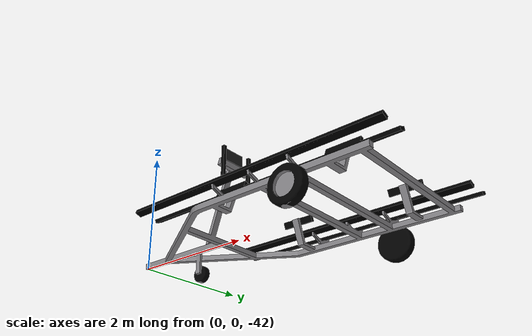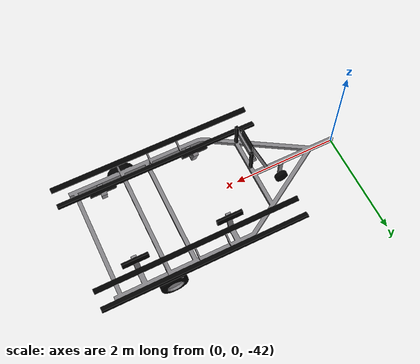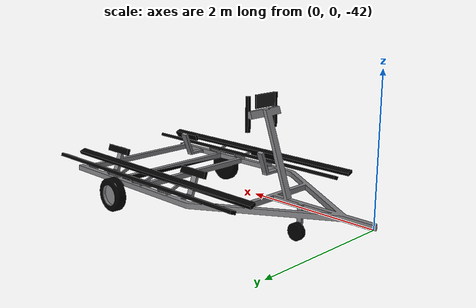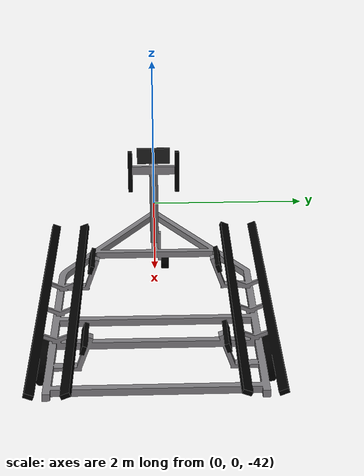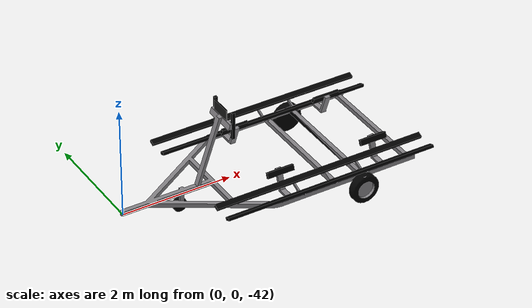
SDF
<?xml version="1.0" ?>
<sdf version="1.5">
  <model name="trailer">
    <pose>0 0 -42 0 0 0</pose>
    <static>true</static>
    <link name="body">
      <visual name="visual">
        <geometry>
          <mesh><uri>model://trailer/media/trailer.dae</uri></mesh>
        </geometry>

      </visual>

      <visual name="panel_1">
        <pose>1.85 0.00 1.4 0 1.57 1.57</pose>
        <geometry>
          <box>
            <size>.192 .01 .386</size>
          </box>
        </geometry>
        <material>
          <script>
            <uri>file://media/materials/scripts/gazebo.material</uri>
            <name>Gazebo/Black</name>
          </script>
        </material>
        <plugin name="vrx::LightBuoyPlugin" filename="libLightBuoyPlugin.so">
          <color_1>red</color_1>
          <color_2>green</color_2>
          <color_3>red</color_3>
          <visuals>
            <visual>trailer::body::panel_1</visual>
          </visuals>
        </plugin>
      </visual>

      <visual name="panel_2">
        <pose>1.84 0.00 1.4 0 1.57 1.57</pose>
        <geometry>
          <box>
            <size>.192 .01 .386</size>
          </box>
        </geometry>
        <material>
          <script>
            <uri>file://media/materials/scripts/gazebo.material</uri>
            <name>Gazebo/Black</name>
          </script>
        </material>
      </visual>

      <collision name="collision">
        <geometry>
          <mesh><uri>model://trailer/media/trailer.dae</uri></mesh>
        </geometry>
      </collision>
    </link>
  </model>
</sdf>
